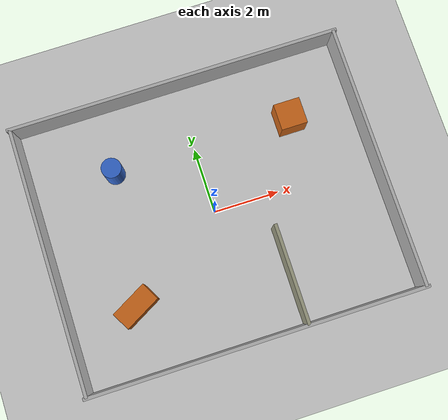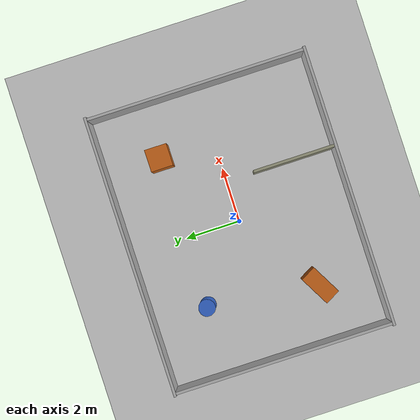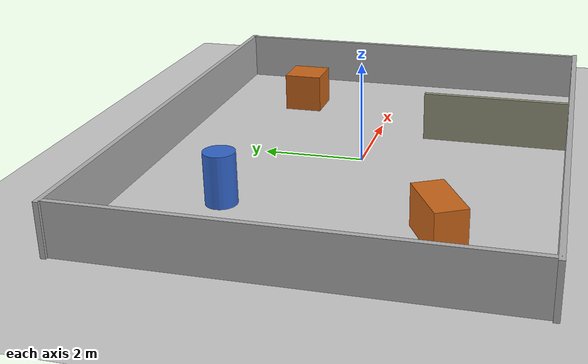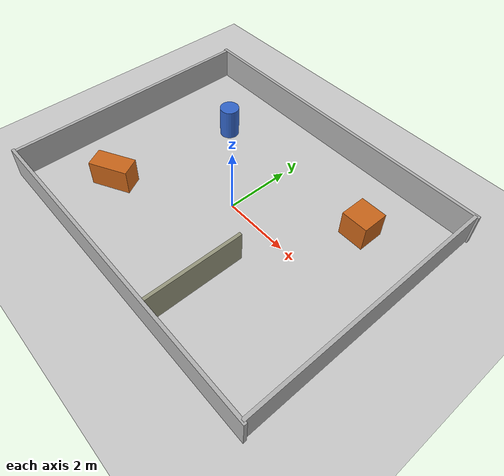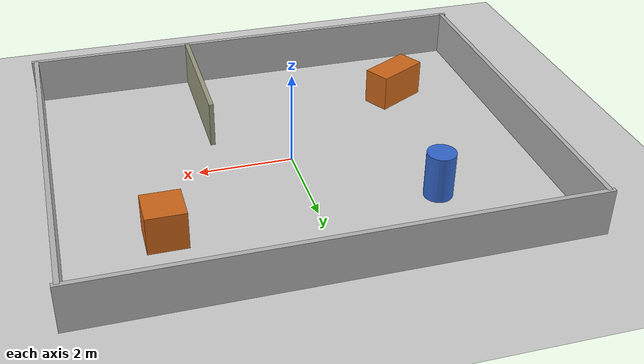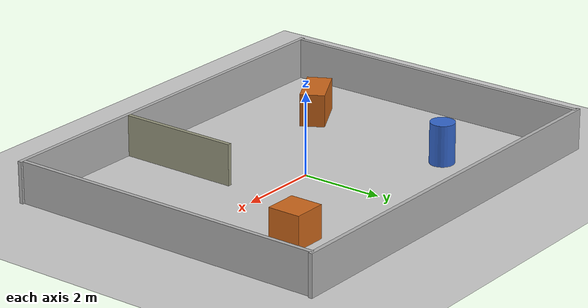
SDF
<?xml version="1.0" ?>
<sdf version="1.9">
  <world name="kmr_iiwa_world">
    <gravity>0 0 -9.81</gravity>
    <physics name="1ms" type="ignored">
      <max_step_size>0.001</max_step_size>
      <real_time_factor>1.0</real_time_factor>
    </physics>
    <plugin
      filename="ignition-gazebo-physics-system"
      name="ignition::gazebo::systems::Physics">
    </plugin>
    <plugin
        filename="ignition-gazebo-scene-broadcaster-system"
        name="ignition::gazebo::systems::SceneBroadcaster">
    </plugin>
    <plugin
      filename="gz-sim-sensors-system"
      name="gz::sim::systems::Sensors">
      <render_engine>ogre2</render_engine>
    </plugin>

    <plugin filename="libignition-gazebo-imu-system.so"
            name="ignition::gazebo::systems::Imu">
    </plugin>
    <plugin
      filename="libignition-gazebo-magnetometer-system"
      name="ignition::gazebo::systems::Magnetometer">
    </plugin>
    <plugin
      filename="libignition-gazebo-forcetorque-system"
      name="ignition::gazebo::systems::ForceTorque">
    </plugin>
    <!-- Necessary for spawining robot even from the launch-->
    <plugin
      filename="libignition-gazebo-user-commands-system"
      name="ignition::gazebo::systems::UserCommands">
    </plugin>

    <light type="directional" name="sun">
      <cast_shadows>true</cast_shadows>
      <pose>0 0 10 0 0 0</pose>
      <diffuse>0.8 0.8 0.8 1</diffuse>
      <specular>0.2 0.2 0.2 1</specular>
      <attenuation>
        <range>1000</range>
        <constant>0.9</constant>
        <linear>0.01</linear>
        <quadratic>0.001</quadratic>
      </attenuation>
      <direction>-0.5 0.1 -0.9</direction>
    </light>

    <model name="ground_plane">
      <static>true</static>
      <link name="link">
        <collision name="collision">
          <geometry>
            <plane>
              <normal>0 0 1</normal>
              <size>100 100</size>
            </plane>
          </geometry>
        </collision>
        <visual name="visual">
          <geometry>
            <plane>
              <normal>0 0 1</normal>
              <size>100 100</size>
            </plane>
          </geometry>
          <material>
            <ambient>0.8 0.8 0.8 1</ambient>
            <diffuse>0.8 0.8 0.8 1</diffuse>
            <specular>0.8 0.8 0.8 1</specular>
          </material>
        </visual>
      </link>
    </model>
    <!-- OBSTÁCULOS DE PRUEBA (provisional, no es el laboratorio) -->
    <!-- Sala de 10 x 8 m centrada en el origen, robot en (0,0) -->
    <!-- Asimétrica a propósito para que SLAM no se confunda    -->

    <!-- Paredes exteriores -->
    <model name="pared_norte">
      <static>true</static>
      <pose>0 4 0.5 0 0 0</pose>
      <link name="link">
        <collision name="collision"><geometry><box><size>10.2 0.1 1.0</size></box></geometry></collision>
        <visual name="visual"><geometry><box><size>10.2 0.1 1.0</size></box></geometry>
          <material><ambient>0.7 0.7 0.7 1</ambient><diffuse>0.7 0.7 0.7 1</diffuse></material></visual>
      </link>
    </model>

    <model name="pared_sur">
      <static>true</static>
      <pose>0 -4 0.5 0 0 0</pose>
      <link name="link">
        <collision name="collision"><geometry><box><size>10.2 0.1 1.0</size></box></geometry></collision>
        <visual name="visual"><geometry><box><size>10.2 0.1 1.0</size></box></geometry>
          <material><ambient>0.7 0.7 0.7 1</ambient><diffuse>0.7 0.7 0.7 1</diffuse></material></visual>
      </link>
    </model>

    <model name="pared_este">
      <static>true</static>
      <pose>5 0 0.5 0 0 0</pose>
      <link name="link">
        <collision name="collision"><geometry><box><size>0.1 8.0 1.0</size></box></geometry></collision>
        <visual name="visual"><geometry><box><size>0.1 8.0 1.0</size></box></geometry>
          <material><ambient>0.7 0.7 0.7 1</ambient><diffuse>0.7 0.7 0.7 1</diffuse></material></visual>
      </link>
    </model>

    <model name="pared_oeste">
      <static>true</static>
      <pose>-5 0 0.5 0 0 0</pose>
      <link name="link">
        <collision name="collision"><geometry><box><size>0.1 8.0 1.0</size></box></geometry></collision>
        <visual name="visual"><geometry><box><size>0.1 8.0 1.0</size></box></geometry>
          <material><ambient>0.7 0.7 0.7 1</ambient><diffuse>0.7 0.7 0.7 1</diffuse></material></visual>
      </link>
    </model>

    <!-- Tabique interior (rompe la simetría de la sala) -->
    <model name="tabique">
      <static>true</static>
      <pose>1.5 -2.5 0.5 0 0 0</pose>
      <link name="link">
        <collision name="collision"><geometry><box><size>0.1 3.0 1.0</size></box></geometry></collision>
        <visual name="visual"><geometry><box><size>0.1 3.0 1.0</size></box></geometry>
          <material><ambient>0.6 0.6 0.5 1</ambient><diffuse>0.6 0.6 0.5 1</diffuse></material></visual>
      </link>
    </model>

    <!-- Obstáculos sueltos -->
    <model name="caja_1">
      <static>true</static>
      <pose>3 2 0.4 0 0 0</pose>
      <link name="link">
        <collision name="collision"><geometry><box><size>0.8 0.8 0.8</size></box></geometry></collision>
        <visual name="visual"><geometry><box><size>0.8 0.8 0.8</size></box></geometry>
          <material><ambient>0.8 0.4 0.1 1</ambient><diffuse>0.8 0.4 0.1 1</diffuse></material></visual>
      </link>
    </model>

    <model name="caja_2">
      <static>true</static>
      <pose>-3 -2 0.4 0 0 0.5</pose>
      <link name="link">
        <collision name="collision"><geometry><box><size>1.2 0.6 0.8</size></box></geometry></collision>
        <visual name="visual"><geometry><box><size>1.2 0.6 0.8</size></box></geometry>
          <material><ambient>0.8 0.4 0.1 1</ambient><diffuse>0.8 0.4 0.1 1</diffuse></material></visual>
      </link>
    </model>

    <model name="columna">
      <static>true</static>
      <pose>-2.5 2 0.5 0 0 0</pose>
      <link name="link">
        <collision name="collision"><geometry><cylinder><radius>0.3</radius><length>1.0</length></cylinder></geometry></collision>
        <visual name="visual"><geometry><cylinder><radius>0.3</radius><length>1.0</length></cylinder></geometry>
          <material><ambient>0.2 0.4 0.8 1</ambient><diffuse>0.2 0.4 0.8 1</diffuse></material></visual>
      </link>
    </model>
  </world>
</sdf>
